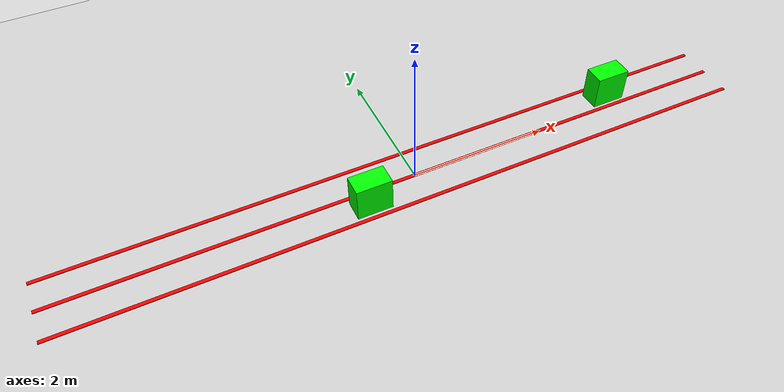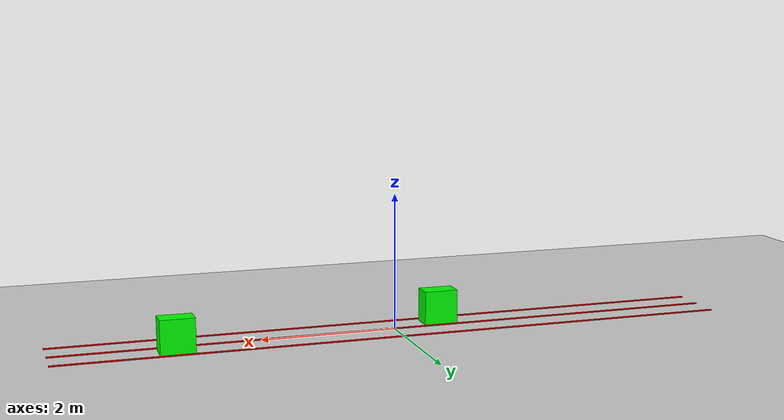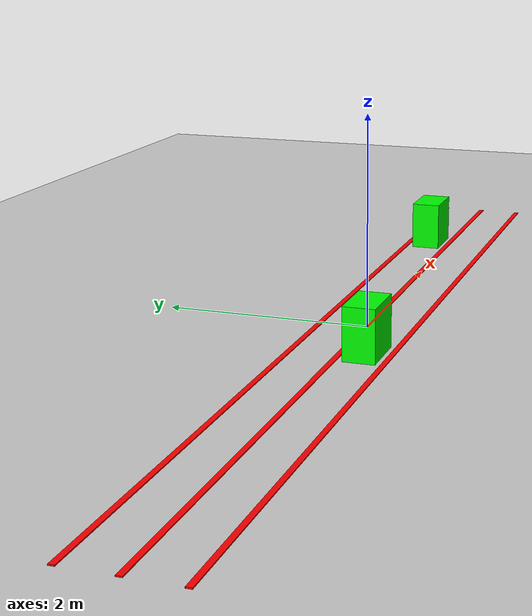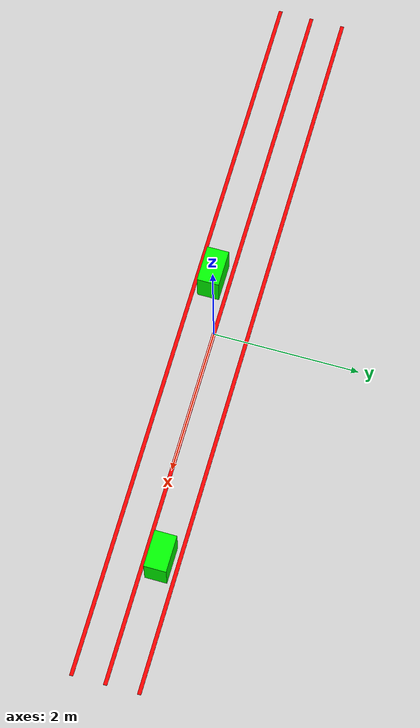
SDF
<?xml version="1.0" ?>
<sdf version="1.9">
  <world name="doubleLane">
    <physics type="ode">
      <max_step_size>0.004</max_step_size>
      <real_time_update_rate>250</real_time_update_rate>
    </physics>
    <scene>
      <shadows>false</shadows>
    </scene>
    <include>
      <uri>https://fuel.gazebosim.org/1.0/OpenRobotics/models/Sun</uri>
    </include>
    <model name="ground_plane">
      <static>true</static>
      <link name="link">
        <collision name="collision">
          <geometry><plane><normal>0 0 1</normal><size>50 50</size></plane></geometry>
        </collision>
        <visual name="visual">
          <geometry><plane><normal>0 0 1</normal><size>50 50</size></plane></geometry>
          <material><ambient>0.8 0.8 0.8 1</ambient><diffuse>0.8 0.8 0.8 1</diffuse></material>
        </visual>
      </link>
    </model>
	<model name="left_lane">
      <static>true</static>
      <pose>0 0.45 0.01 0 0 0</pose>
      <link name="link">
        <visual name="visual">
          <geometry><box><size>10 0.05 0.01</size></box></geometry>
          <material><ambient>1 0 0 1</ambient><diffuse>1 0 0 1</diffuse></material>
        </visual>
      </link>
    </model>
    <model name="center_lane">
      <static>true</static>
      <pose>0 0 0.01 0 0 0</pose>
      <link name="link">
        <visual name="visual">
          <geometry><box><size>10 0.05 0.01</size></box></geometry>
          <material><ambient>1 0 0 1</ambient><diffuse>1 0 0 1</diffuse></material>
        </visual>
      </link>
    </model>
    <model name="right_lane">
      <static>true</static>
      <pose>0 -0.45 0.01 0 0 0</pose>
      <link name="link">
        <visual name="visual">
          <geometry><box><size>10 0.05 0.01</size></box></geometry>
          <material><ambient>1 0 0 1</ambient><diffuse>1 0 0 1</diffuse></material>
        </visual>
      </link>
    </model>
	<model name="obstacle_4m">
      <static>true</static>
      <pose>-0.75 -0.225 0.25 0 0 0</pose>
      <link name="link">
        <collision name="collision">
          <geometry><box><size>0.5 0.3 0.5</size></box></geometry>
        </collision>
        <visual name="visual">
          <geometry><box><size>0.5 0.3 0.5</size></box></geometry>
          <material><ambient>0 1 0 1</ambient><diffuse>0 1 0 1</diffuse></material>
        </visual>
      </link>
    </model>

    <model name="obstacle_8m">
      <static>true</static>
      <pose>3.25 0.225 0.25 0 0 0</pose>
      <link name="link">
        <collision name="collision">
          <geometry><box><size>0.5 0.3 0.5</size></box></geometry>
        </collision>
        <visual name="visual">
          <geometry><box><size>0.5 0.3 0.5</size></box></geometry>
          <material><ambient>0 1 0 1</ambient><diffuse>0 1 0 1</diffuse></material>
        </visual>
      </link>
    </model>
  </world>
</sdf>
